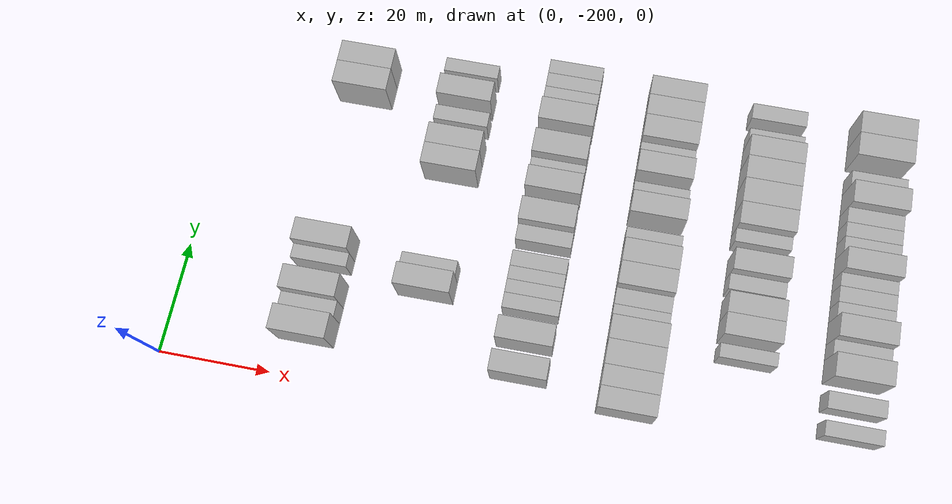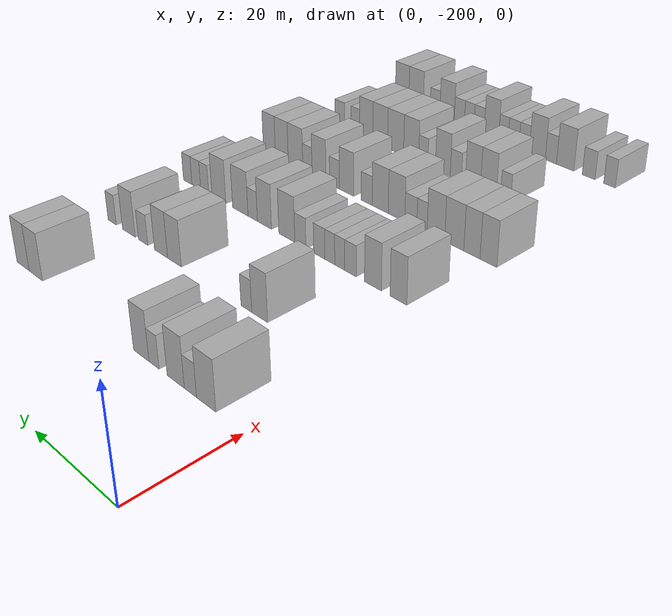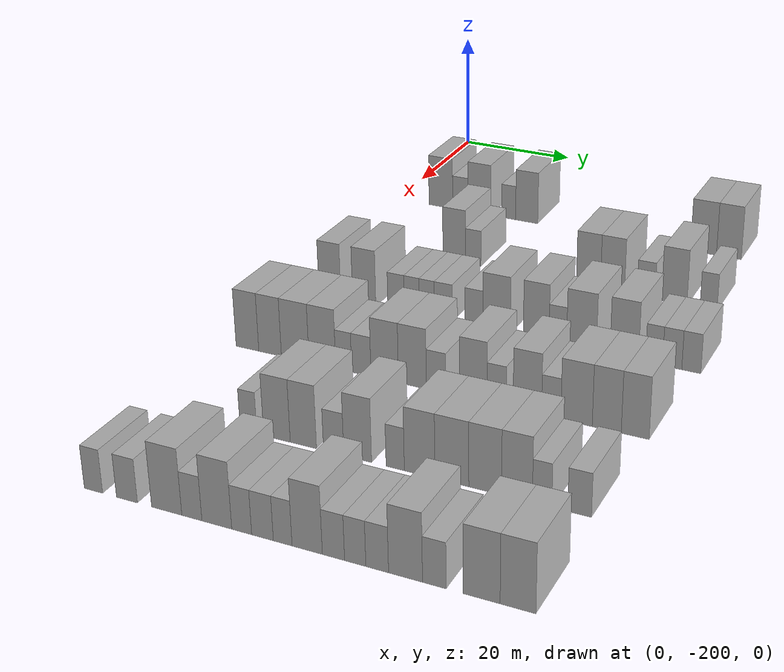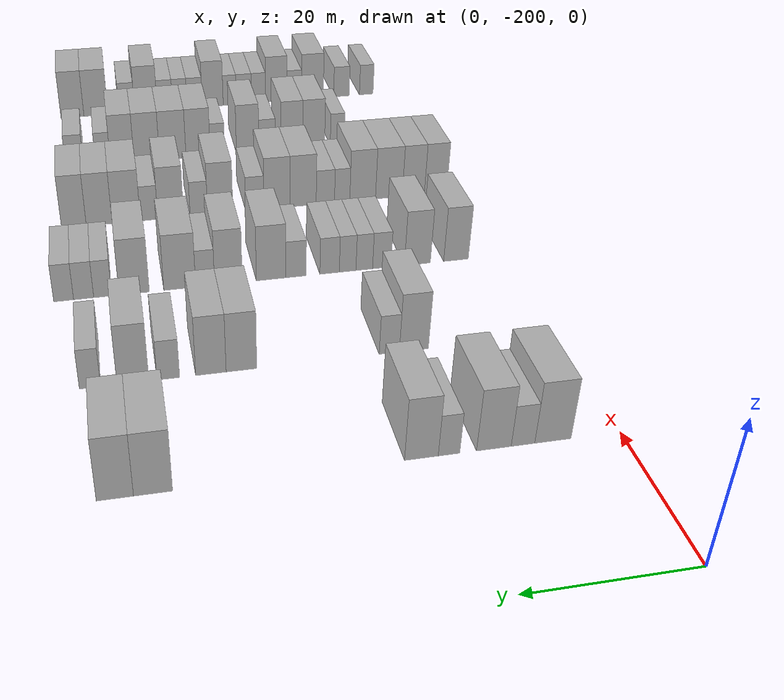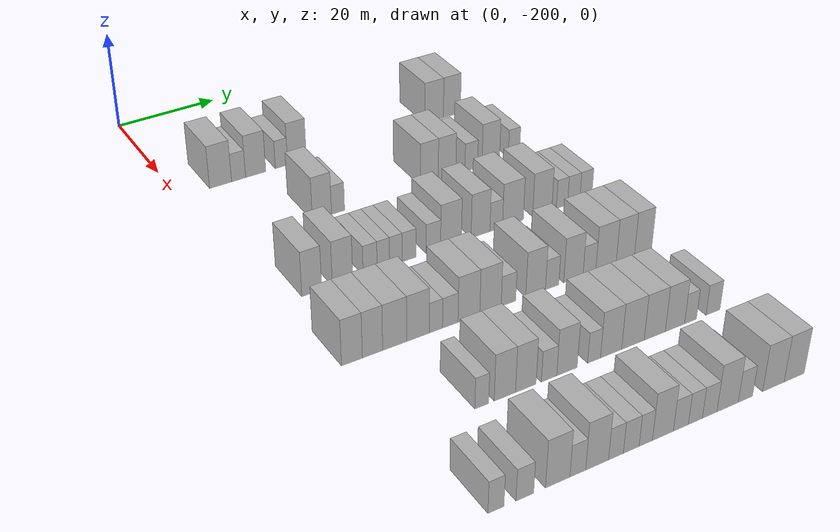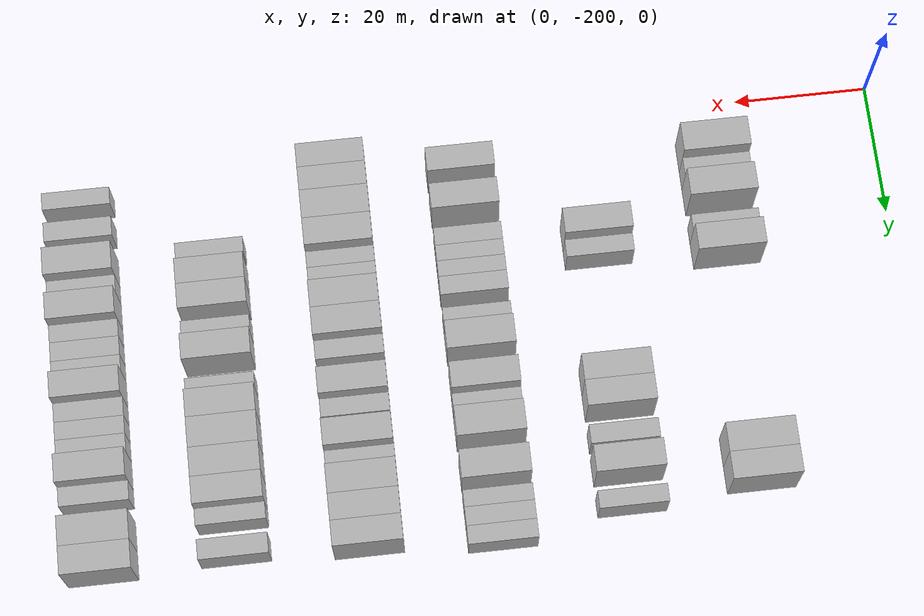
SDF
<sdf version="1.6">
 <world name="default">
  <model name="building_32">
   <static>1</static>
   <pose>25.0000 -191.6888 0 0.000000 0.000000 0.000000</pose>
   <link name="link">
    <pose>0 0 4.50 0 0 0</pose>
    <collision name="collision"><geometry><box><size>10.0000 4.4286 9.0000</size></box></geometry></collision>
    <visual name="visual">
     <cast_shadows>0</cast_shadows>
     <geometry><box><size>10.0000 4.4286 9.0000</size></box></geometry>
     <material>
      <script>
       <uri>model://HANNAS_wall/materials/scripts</uri>
       <uri>model://HANNAS_wall/materials/textures</uri>
       <name>vrc/HANNAS_wall</name>
      </script>
     </material>
    </visual>
   </link>
  </model>
  <model name="building_33">
   <static>1</static>
   <pose>25.0000 -188.0455 0 0.000000 0.000000 0.000000</pose>
   <link name="link">
    <pose>0 0 3.00 0 0 0</pose>
    <collision name="collision"><geometry><box><size>10.0000 2.8581 6.0000</size></box></geometry></collision>
    <visual name="visual">
     <cast_shadows>0</cast_shadows>
     <geometry><box><size>10.0000 2.8581 6.0000</size></box></geometry>
     <material>
      <script>
       <uri>model://HANNAS_wall/materials/scripts</uri>
       <uri>model://HANNAS_wall/materials/textures</uri>
       <name>vrc/HANNAS_wall</name>
      </script>
     </material>
    </visual>
   </link>
  </model>
  <model name="building_34">
   <static>1</static>
   <pose>25.0000 -184.5348 0 0.000000 0.000000 0.000000</pose>
   <link name="link">
    <pose>0 0 4.50 0 0 0</pose>
    <collision name="collision"><geometry><box><size>10.0000 4.1634 9.0000</size></box></geometry></collision>
    <visual name="visual">
     <cast_shadows>0</cast_shadows>
     <geometry><box><size>10.0000 4.1634 9.0000</size></box></geometry>
     <material>
      <script>
       <uri>model://HANNAS_wall/materials/scripts</uri>
       <uri>model://HANNAS_wall/materials/textures</uri>
       <name>vrc/HANNAS_wall</name>
      </script>
     </material>
    </visual>
   </link>
  </model>
  <model name="building_35">
   <static>1</static>
   <pose>25.0000 -179.1760 0 0.000000 0.000000 0.000000</pose>
   <link name="link">
    <pose>0 0 3.00 0 0 0</pose>
    <collision name="collision"><geometry><box><size>10.0000 2.5541 6.0000</size></box></geometry></collision>
    <visual name="visual">
     <cast_shadows>0</cast_shadows>
     <geometry><box><size>10.0000 2.5541 6.0000</size></box></geometry>
     <material>
      <script>
       <uri>model://HANNAS_wall/materials/scripts</uri>
       <uri>model://HANNAS_wall/materials/textures</uri>
       <name>vrc/HANNAS_wall</name>
      </script>
     </material>
    </visual>
   </link>
  </model>
  <model name="building_36">
   <static>1</static>
   <pose>25.0000 -175.9138 0 0.000000 0.000000 0.000000</pose>
   <link name="link">
    <pose>0 0 4.50 0 0 0</pose>
    <collision name="collision"><geometry><box><size>10.0000 3.9703 9.0000</size></box></geometry></collision>
    <visual name="visual">
     <cast_shadows>0</cast_shadows>
     <geometry><box><size>10.0000 3.9703 9.0000</size></box></geometry>
     <material>
      <script>
       <uri>model://HANNAS_wall/materials/scripts</uri>
       <uri>model://HANNAS_wall/materials/textures</uri>
       <name>vrc/HANNAS_wall</name>
      </script>
     </material>
    </visual>
   </link>
  </model>
  <model name="building_37">
   <static>1</static>
   <pose>25.0000 -145.5327 0 0.000000 0.000000 0.000000</pose>
   <link name="link">
    <pose>0 0 4.50 0 0 0</pose>
    <collision name="collision"><geometry><box><size>10.0000 4.2640 9.0000</size></box></geometry></collision>
    <visual name="visual">
     <cast_shadows>0</cast_shadows>
     <geometry><box><size>10.0000 4.2640 9.0000</size></box></geometry>
     <material>
      <script>
       <uri>model://HANNAS_wall/materials/scripts</uri>
       <uri>model://HANNAS_wall/materials/textures</uri>
       <name>vrc/HANNAS_wall</name>
      </script>
     </material>
    </visual>
   </link>
  </model>
  <model name="building_38">
   <static>1</static>
   <pose>25.0000 -141.3918 0 0.000000 0.000000 0.000000</pose>
   <link name="link">
    <pose>0 0 4.50 0 0 0</pose>
    <collision name="collision"><geometry><box><size>10.0000 4.0177 9.0000</size></box></geometry></collision>
    <visual name="visual">
     <cast_shadows>0</cast_shadows>
     <geometry><box><size>10.0000 4.0177 9.0000</size></box></geometry>
     <material>
      <script>
       <uri>model://HANNAS_wall/materials/scripts</uri>
       <uri>model://HANNAS_wall/materials/textures</uri>
       <name>vrc/HANNAS_wall</name>
      </script>
     </material>
    </visual>
   </link>
  </model>
  <model name="building_203">
   <static>1</static>
   <pose>44.0000 -180.4680 0 0.000000 0.000000 0.000000</pose>
   <link name="link">
    <pose>0 0 4.50 0 0 0</pose>
    <collision name="collision"><geometry><box><size>10.0000 3.8608 9.0000</size></box></geometry></collision>
    <visual name="visual">
     <cast_shadows>0</cast_shadows>
     <geometry><box><size>10.0000 3.8608 9.0000</size></box></geometry>
     <material>
      <script>
       <uri>model://HANNAS_wall/materials/scripts</uri>
       <uri>model://HANNAS_wall/materials/textures</uri>
       <name>vrc/HANNAS_wall</name>
      </script>
     </material>
    </visual>
   </link>
  </model>
  <model name="building_204">
   <static>1</static>
   <pose>44.0000 -177.2035 0 0.000000 0.000000 0.000000</pose>
   <link name="link">
    <pose>0 0 3.00 0 0 0</pose>
    <collision name="collision"><geometry><box><size>10.0000 2.6682 6.0000</size></box></geometry></collision>
    <visual name="visual">
     <cast_shadows>0</cast_shadows>
     <geometry><box><size>10.0000 2.6682 6.0000</size></box></geometry>
     <material>
      <script>
       <uri>model://HANNAS_wall/materials/scripts</uri>
       <uri>model://HANNAS_wall/materials/textures</uri>
       <name>vrc/HANNAS_wall</name>
      </script>
     </material>
    </visual>
   </link>
  </model>
  <model name="building_205">
   <static>1</static>
   <pose>44.0000 -158.0438 0 0.000000 0.000000 0.000000</pose>
   <link name="link">
    <pose>0 0 4.50 0 0 0</pose>
    <collision name="collision"><geometry><box><size>10.0000 3.8838 9.0000</size></box></geometry></collision>
    <visual name="visual">
     <cast_shadows>0</cast_shadows>
     <geometry><box><size>10.0000 3.8838 9.0000</size></box></geometry>
     <material>
      <script>
       <uri>model://HANNAS_wall/materials/scripts</uri>
       <uri>model://HANNAS_wall/materials/textures</uri>
       <name>vrc/HANNAS_wall</name>
      </script>
     </material>
    </visual>
   </link>
  </model>
  <model name="building_206">
   <static>1</static>
   <pose>44.0000 -154.1832 0 0.000000 0.000000 0.000000</pose>
   <link name="link">
    <pose>0 0 4.50 0 0 0</pose>
    <collision name="collision"><geometry><box><size>10.0000 3.8373 9.0000</size></box></geometry></collision>
    <visual name="visual">
     <cast_shadows>0</cast_shadows>
     <geometry><box><size>10.0000 3.8373 9.0000</size></box></geometry>
     <material>
      <script>
       <uri>model://HANNAS_wall/materials/scripts</uri>
       <uri>model://HANNAS_wall/materials/textures</uri>
       <name>vrc/HANNAS_wall</name>
      </script>
     </material>
    </visual>
   </link>
  </model>
  <model name="building_207">
   <static>1</static>
   <pose>44.0000 -148.8569 0 0.000000 0.000000 0.000000</pose>
   <link name="link">
    <pose>0 0 3.00 0 0 0</pose>
    <collision name="collision"><geometry><box><size>10.0000 2.8153 6.0000</size></box></geometry></collision>
    <visual name="visual">
     <cast_shadows>0</cast_shadows>
     <geometry><box><size>10.0000 2.8153 6.0000</size></box></geometry>
     <material>
      <script>
       <uri>model://HANNAS_wall/materials/scripts</uri>
       <uri>model://HANNAS_wall/materials/textures</uri>
       <name>vrc/HANNAS_wall</name>
      </script>
     </material>
    </visual>
   </link>
  </model>
  <model name="building_208">
   <static>1</static>
   <pose>44.0000 -144.4841 0 0.000000 0.000000 0.000000</pose>
   <link name="link">
    <pose>0 0 4.50 0 0 0</pose>
    <collision name="collision"><geometry><box><size>10.0000 3.9303 9.0000</size></box></geometry></collision>
    <visual name="visual">
     <cast_shadows>0</cast_shadows>
     <geometry><box><size>10.0000 3.9303 9.0000</size></box></geometry>
     <material>
      <script>
       <uri>model://HANNAS_wall/materials/scripts</uri>
       <uri>model://HANNAS_wall/materials/textures</uri>
       <name>vrc/HANNAS_wall</name>
      </script>
     </material>
    </visual>
   </link>
  </model>
  <model name="building_209">
   <static>1</static>
   <pose>44.0000 -139.2218 0 0.000000 0.000000 0.000000</pose>
   <link name="link">
    <pose>0 0 3.00 0 0 0</pose>
    <collision name="collision"><geometry><box><size>10.0000 2.5944 6.0000</size></box></geometry></collision>
    <visual name="visual">
     <cast_shadows>0</cast_shadows>
     <geometry><box><size>10.0000 2.5944 6.0000</size></box></geometry>
     <material>
      <script>
       <uri>model://HANNAS_wall/materials/scripts</uri>
       <uri>model://HANNAS_wall/materials/textures</uri>
       <name>vrc/HANNAS_wall</name>
      </script>
     </material>
    </visual>
   </link>
  </model>
  <model name="building_373">
   <static>1</static>
   <pose>63.0000 -192.2222 0 0.000000 0.000000 0.000000</pose>
   <link name="link">
    <pose>0 0 4.50 0 0 0</pose>
    <collision name="collision"><geometry><box><size>10.0000 3.7101 9.0000</size></box></geometry></collision>
    <visual name="visual">
     <cast_shadows>0</cast_shadows>
     <geometry><box><size>10.0000 3.7101 9.0000</size></box></geometry>
     <material>
      <script>
       <uri>model://HANNAS_wall/materials/scripts</uri>
       <uri>model://HANNAS_wall/materials/textures</uri>
       <name>vrc/HANNAS_wall</name>
      </script>
     </material>
    </visual>
   </link>
  </model>
  <model name="building_374">
   <static>1</static>
   <pose>63.0000 -186.4285 0 0.000000 0.000000 0.000000</pose>
   <link name="link">
    <pose>0 0 4.50 0 0 0</pose>
    <collision name="collision"><geometry><box><size>10.0000 3.8772 9.0000</size></box></geometry></collision>
    <visual name="visual">
     <cast_shadows>0</cast_shadows>
     <geometry><box><size>10.0000 3.8772 9.0000</size></box></geometry>
     <material>
      <script>
       <uri>model://HANNAS_wall/materials/scripts</uri>
       <uri>model://HANNAS_wall/materials/textures</uri>
       <name>vrc/HANNAS_wall</name>
      </script>
     </material>
    </visual>
   </link>
  </model>
  <model name="building_375">
   <static>1</static>
   <pose>63.0000 -181.1315 0 0.000000 0.000000 0.000000</pose>
   <link name="link">
    <pose>0 0 3.00 0 0 0</pose>
    <collision name="collision"><geometry><box><size>10.0000 2.7168 6.0000</size></box></geometry></collision>
    <visual name="visual">
     <cast_shadows>0</cast_shadows>
     <geometry><box><size>10.0000 2.7168 6.0000</size></box></geometry>
     <material>
      <script>
       <uri>model://HANNAS_wall/materials/scripts</uri>
       <uri>model://HANNAS_wall/materials/textures</uri>
       <name>vrc/HANNAS_wall</name>
      </script>
     </material>
    </visual>
   </link>
  </model>
  <model name="building_376">
   <static>1</static>
   <pose>63.0000 -178.5489 0 0.000000 0.000000 0.000000</pose>
   <link name="link">
    <pose>0 0 3.00 0 0 0</pose>
    <collision name="collision"><geometry><box><size>10.0000 2.4485 6.0000</size></box></geometry></collision>
    <visual name="visual">
     <cast_shadows>0</cast_shadows>
     <geometry><box><size>10.0000 2.4485 6.0000</size></box></geometry>
     <material>
      <script>
       <uri>model://HANNAS_wall/materials/scripts</uri>
       <uri>model://HANNAS_wall/materials/textures</uri>
       <name>vrc/HANNAS_wall</name>
      </script>
     </material>
    </visual>
   </link>
  </model>
  <model name="building_377">
   <static>1</static>
   <pose>63.0000 -176.1069 0 0.000000 0.000000 0.000000</pose>
   <link name="link">
    <pose>0 0 3.00 0 0 0</pose>
    <collision name="collision"><geometry><box><size>10.0000 2.4354 6.0000</size></box></geometry></collision>
    <visual name="visual">
     <cast_shadows>0</cast_shadows>
     <geometry><box><size>10.0000 2.4354 6.0000</size></box></geometry>
     <material>
      <script>
       <uri>model://HANNAS_wall/materials/scripts</uri>
       <uri>model://HANNAS_wall/materials/textures</uri>
       <name>vrc/HANNAS_wall</name>
      </script>
     </material>
    </visual>
   </link>
  </model>
  <model name="building_378">
   <static>1</static>
   <pose>63.0000 -173.4759 0 0.000000 0.000000 0.000000</pose>
   <link name="link">
    <pose>0 0 3.00 0 0 0</pose>
    <collision name="collision"><geometry><box><size>10.0000 2.8267 6.0000</size></box></geometry></collision>
    <visual name="visual">
     <cast_shadows>0</cast_shadows>
     <geometry><box><size>10.0000 2.8267 6.0000</size></box></geometry>
     <material>
      <script>
       <uri>model://HANNAS_wall/materials/scripts</uri>
       <uri>model://HANNAS_wall/materials/textures</uri>
       <name>vrc/HANNAS_wall</name>
      </script>
     </material>
    </visual>
   </link>
  </model>
  <model name="building_379">
   <static>1</static>
   <pose>63.0000 -168.6090 0 0.000000 0.000000 0.000000</pose>
   <link name="link">
    <pose>0 0 3.00 0 0 0</pose>
    <collision name="collision"><geometry><box><size>10.0000 2.9070 6.0000</size></box></geometry></collision>
    <visual name="visual">
     <cast_shadows>0</cast_shadows>
     <geometry><box><size>10.0000 2.9070 6.0000</size></box></geometry>
     <material>
      <script>
       <uri>model://HANNAS_wall/materials/scripts</uri>
       <uri>model://HANNAS_wall/materials/textures</uri>
       <name>vrc/HANNAS_wall</name>
      </script>
     </material>
    </visual>
   </link>
  </model>
  <model name="building_380">
   <static>1</static>
   <pose>63.0000 -165.0310 0 0.000000 0.000000 0.000000</pose>
   <link name="link">
    <pose>0 0 4.50 0 0 0</pose>
    <collision name="collision"><geometry><box><size>10.0000 4.2492 9.0000</size></box></geometry></collision>
    <visual name="visual">
     <cast_shadows>0</cast_shadows>
     <geometry><box><size>10.0000 4.2492 9.0000</size></box></geometry>
     <material>
      <script>
       <uri>model://HANNAS_wall/materials/scripts</uri>
       <uri>model://HANNAS_wall/materials/textures</uri>
       <name>vrc/HANNAS_wall</name>
      </script>
     </material>
    </visual>
   </link>
  </model>
  <model name="building_381">
   <static>1</static>
   <pose>63.0000 -158.9489 0 0.000000 0.000000 0.000000</pose>
   <link name="link">
    <pose>0 0 4.50 0 0 0</pose>
    <collision name="collision"><geometry><box><size>10.0000 3.9150 9.0000</size></box></geometry></collision>
    <visual name="visual">
     <cast_shadows>0</cast_shadows>
     <geometry><box><size>10.0000 3.9150 9.0000</size></box></geometry>
     <material>
      <script>
       <uri>model://HANNAS_wall/materials/scripts</uri>
       <uri>model://HANNAS_wall/materials/textures</uri>
       <name>vrc/HANNAS_wall</name>
      </script>
     </material>
    </visual>
   </link>
  </model>
  <model name="building_382">
   <static>1</static>
   <pose>63.0000 -155.6647 0 0.000000 0.000000 0.000000</pose>
   <link name="link">
    <pose>0 0 3.00 0 0 0</pose>
    <collision name="collision"><geometry><box><size>10.0000 2.6535 6.0000</size></box></geometry></collision>
    <visual name="visual">
     <cast_shadows>0</cast_shadows>
     <geometry><box><size>10.0000 2.6535 6.0000</size></box></geometry>
     <material>
      <script>
       <uri>model://HANNAS_wall/materials/scripts</uri>
       <uri>model://HANNAS_wall/materials/textures</uri>
       <name>vrc/HANNAS_wall</name>
      </script>
     </material>
    </visual>
   </link>
  </model>
  <model name="building_383">
   <static>1</static>
   <pose>63.0000 -152.1112 0 0.000000 0.000000 0.000000</pose>
   <link name="link">
    <pose>0 0 4.50 0 0 0</pose>
    <collision name="collision"><geometry><box><size>10.0000 4.4535 9.0000</size></box></geometry></collision>
    <visual name="visual">
     <cast_shadows>0</cast_shadows>
     <geometry><box><size>10.0000 4.4535 9.0000</size></box></geometry>
     <material>
      <script>
       <uri>model://HANNAS_wall/materials/scripts</uri>
       <uri>model://HANNAS_wall/materials/textures</uri>
       <name>vrc/HANNAS_wall</name>
      </script>
     </material>
    </visual>
   </link>
  </model>
  <model name="building_384">
   <static>1</static>
   <pose>63.0000 -145.7949 0 0.000000 0.000000 0.000000</pose>
   <link name="link">
    <pose>0 0 4.50 0 0 0</pose>
    <collision name="collision"><geometry><box><size>10.0000 4.1791 9.0000</size></box></geometry></collision>
    <visual name="visual">
     <cast_shadows>0</cast_shadows>
     <geometry><box><size>10.0000 4.1791 9.0000</size></box></geometry>
     <material>
      <script>
       <uri>model://HANNAS_wall/materials/scripts</uri>
       <uri>model://HANNAS_wall/materials/textures</uri>
       <name>vrc/HANNAS_wall</name>
      </script>
     </material>
    </visual>
   </link>
  </model>
  <model name="building_385">
   <static>1</static>
   <pose>63.0000 -141.4690 0 0.000000 0.000000 0.000000</pose>
   <link name="link">
    <pose>0 0 3.00 0 0 0</pose>
    <collision name="collision"><geometry><box><size>10.0000 2.4728 6.0000</size></box></geometry></collision>
    <visual name="visual">
     <cast_shadows>0</cast_shadows>
     <geometry><box><size>10.0000 2.4728 6.0000</size></box></geometry>
     <material>
      <script>
       <uri>model://HANNAS_wall/materials/scripts</uri>
       <uri>model://HANNAS_wall/materials/textures</uri>
       <name>vrc/HANNAS_wall</name>
      </script>
     </material>
    </visual>
   </link>
  </model>
  <model name="building_386">
   <static>1</static>
   <pose>63.0000 -138.8654 0 0.000000 0.000000 0.000000</pose>
   <link name="link">
    <pose>0 0 3.00 0 0 0</pose>
    <collision name="collision"><geometry><box><size>10.0000 2.7344 6.0000</size></box></geometry></collision>
    <visual name="visual">
     <cast_shadows>0</cast_shadows>
     <geometry><box><size>10.0000 2.7344 6.0000</size></box></geometry>
     <material>
      <script>
       <uri>model://HANNAS_wall/materials/scripts</uri>
       <uri>model://HANNAS_wall/materials/textures</uri>
       <name>vrc/HANNAS_wall</name>
      </script>
     </material>
    </visual>
   </link>
  </model>
  <model name="building_387">
   <static>1</static>
   <pose>63.0000 -136.1534 0 0.000000 0.000000 0.000000</pose>
   <link name="link">
    <pose>0 0 3.00 0 0 0</pose>
    <collision name="collision"><geometry><box><size>10.0000 2.6896 6.0000</size></box></geometry></collision>
    <visual name="visual">
     <cast_shadows>0</cast_shadows>
     <geometry><box><size>10.0000 2.6896 6.0000</size></box></geometry>
     <material>
      <script>
       <uri>model://HANNAS_wall/materials/scripts</uri>
       <uri>model://HANNAS_wall/materials/textures</uri>
       <name>vrc/HANNAS_wall</name>
      </script>
     </material>
    </visual>
   </link>
  </model>
  <model name="building_546">
   <static>1</static>
   <pose>82.0000 -194.9190 0 0.000000 0.000000 0.000000</pose>
   <link name="link">
    <pose>0 0 4.50 0 0 0</pose>
    <collision name="collision"><geometry><box><size>10.0000 3.6965 9.0000</size></box></geometry></collision>
    <visual name="visual">
     <cast_shadows>0</cast_shadows>
     <geometry><box><size>10.0000 3.6965 9.0000</size></box></geometry>
     <material>
      <script>
       <uri>model://HANNAS_wall/materials/scripts</uri>
       <uri>model://HANNAS_wall/materials/textures</uri>
       <name>vrc/HANNAS_wall</name>
      </script>
     </material>
    </visual>
   </link>
  </model>
  <model name="building_547">
   <static>1</static>
   <pose>82.0000 -191.2477 0 0.000000 0.000000 0.000000</pose>
   <link name="link">
    <pose>0 0 4.50 0 0 0</pose>
    <collision name="collision"><geometry><box><size>10.0000 3.6463 9.0000</size></box></geometry></collision>
    <visual name="visual">
     <cast_shadows>0</cast_shadows>
     <geometry><box><size>10.0000 3.6463 9.0000</size></box></geometry>
     <material>
      <script>
       <uri>model://HANNAS_wall/materials/scripts</uri>
       <uri>model://HANNAS_wall/materials/textures</uri>
       <name>vrc/HANNAS_wall</name>
      </script>
     </material>
    </visual>
   </link>
  </model>
  <model name="building_548">
   <static>1</static>
   <pose>82.0000 -187.2249 0 0.000000 0.000000 0.000000</pose>
   <link name="link">
    <pose>0 0 4.50 0 0 0</pose>
    <collision name="collision"><geometry><box><size>10.0000 4.3992 9.0000</size></box></geometry></collision>
    <visual name="visual">
     <cast_shadows>0</cast_shadows>
     <geometry><box><size>10.0000 4.3992 9.0000</size></box></geometry>
     <material>
      <script>
       <uri>model://HANNAS_wall/materials/scripts</uri>
       <uri>model://HANNAS_wall/materials/textures</uri>
       <name>vrc/HANNAS_wall</name>
      </script>
     </material>
    </visual>
   </link>
  </model>
  <model name="building_549">
   <static>1</static>
   <pose>82.0000 -182.9332 0 0.000000 0.000000 0.000000</pose>
   <link name="link">
    <pose>0 0 4.50 0 0 0</pose>
    <collision name="collision"><geometry><box><size>10.0000 4.1843 9.0000</size></box></geometry></collision>
    <visual name="visual">
     <cast_shadows>0</cast_shadows>
     <geometry><box><size>10.0000 4.1843 9.0000</size></box></geometry>
     <material>
      <script>
       <uri>model://HANNAS_wall/materials/scripts</uri>
       <uri>model://HANNAS_wall/materials/textures</uri>
       <name>vrc/HANNAS_wall</name>
      </script>
     </material>
    </visual>
   </link>
  </model>
  <model name="building_550">
   <static>1</static>
   <pose>82.0000 -179.6045 0 0.000000 0.000000 0.000000</pose>
   <link name="link">
    <pose>0 0 3.00 0 0 0</pose>
    <collision name="collision"><geometry><box><size>10.0000 2.4730 6.0000</size></box></geometry></collision>
    <visual name="visual">
     <cast_shadows>0</cast_shadows>
     <geometry><box><size>10.0000 2.4730 6.0000</size></box></geometry>
     <material>
      <script>
       <uri>model://HANNAS_wall/materials/scripts</uri>
       <uri>model://HANNAS_wall/materials/textures</uri>
       <name>vrc/HANNAS_wall</name>
      </script>
     </material>
    </visual>
   </link>
  </model>
  <model name="building_551">
   <static>1</static>
   <pose>82.0000 -176.8918 0 0.000000 0.000000 0.000000</pose>
   <link name="link">
    <pose>0 0 3.00 0 0 0</pose>
    <collision name="collision"><geometry><box><size>10.0000 2.9524 6.0000</size></box></geometry></collision>
    <visual name="visual">
     <cast_shadows>0</cast_shadows>
     <geometry><box><size>10.0000 2.9524 6.0000</size></box></geometry>
     <material>
      <script>
       <uri>model://HANNAS_wall/materials/scripts</uri>
       <uri>model://HANNAS_wall/materials/textures</uri>
       <name>vrc/HANNAS_wall</name>
      </script>
     </material>
    </visual>
   </link>
  </model>
  <model name="building_552">
   <static>1</static>
   <pose>82.0000 -173.3333 0 0.000000 0.000000 0.000000</pose>
   <link name="link">
    <pose>0 0 4.50 0 0 0</pose>
    <collision name="collision"><geometry><box><size>10.0000 4.1647 9.0000</size></box></geometry></collision>
    <visual name="visual">
     <cast_shadows>0</cast_shadows>
     <geometry><box><size>10.0000 4.1647 9.0000</size></box></geometry>
     <material>
      <script>
       <uri>model://HANNAS_wall/materials/scripts</uri>
       <uri>model://HANNAS_wall/materials/textures</uri>
       <name>vrc/HANNAS_wall</name>
      </script>
     </material>
    </visual>
   </link>
  </model>
  <model name="building_553">
   <static>1</static>
   <pose>82.0000 -169.1701 0 0.000000 0.000000 0.000000</pose>
   <link name="link">
    <pose>0 0 4.50 0 0 0</pose>
    <collision name="collision"><geometry><box><size>10.0000 4.1615 9.0000</size></box></geometry></collision>
    <visual name="visual">
     <cast_shadows>0</cast_shadows>
     <geometry><box><size>10.0000 4.1615 9.0000</size></box></geometry>
     <material>
      <script>
       <uri>model://HANNAS_wall/materials/scripts</uri>
       <uri>model://HANNAS_wall/materials/textures</uri>
       <name>vrc/HANNAS_wall</name>
      </script>
     </material>
    </visual>
   </link>
  </model>
  <model name="building_554">
   <static>1</static>
   <pose>82.0000 -165.6515 0 0.000000 0.000000 0.000000</pose>
   <link name="link">
    <pose>0 0 3.00 0 0 0</pose>
    <collision name="collision"><geometry><box><size>10.0000 2.8758 6.0000</size></box></geometry></collision>
    <visual name="visual">
     <cast_shadows>0</cast_shadows>
     <geometry><box><size>10.0000 2.8758 6.0000</size></box></geometry>
     <material>
      <script>
       <uri>model://HANNAS_wall/materials/scripts</uri>
       <uri>model://HANNAS_wall/materials/textures</uri>
       <name>vrc/HANNAS_wall</name>
      </script>
     </material>
    </visual>
   </link>
  </model>
  <model name="building_555">
   <static>1</static>
   <pose>82.0000 -160.2362 0 0.000000 0.000000 0.000000</pose>
   <link name="link">
    <pose>0 0 4.50 0 0 0</pose>
    <collision name="collision"><geometry><box><size>10.0000 3.9548 9.0000</size></box></geometry></collision>
    <visual name="visual">
     <cast_shadows>0</cast_shadows>
     <geometry><box><size>10.0000 3.9548 9.0000</size></box></geometry>
     <material>
      <script>
       <uri>model://HANNAS_wall/materials/scripts</uri>
       <uri>model://HANNAS_wall/materials/textures</uri>
       <name>vrc/HANNAS_wall</name>
      </script>
     </material>
    </visual>
   </link>
  </model>
  <model name="building_556">
   <static>1</static>
   <pose>82.0000 -156.8993 0 0.000000 0.000000 0.000000</pose>
   <link name="link">
    <pose>0 0 3.00 0 0 0</pose>
    <collision name="collision"><geometry><box><size>10.0000 2.7191 6.0000</size></box></geometry></collision>
    <visual name="visual">
     <cast_shadows>0</cast_shadows>
     <geometry><box><size>10.0000 2.7191 6.0000</size></box></geometry>
     <material>
      <script>
       <uri>model://HANNAS_wall/materials/scripts</uri>
       <uri>model://HANNAS_wall/materials/textures</uri>
       <name>vrc/HANNAS_wall</name>
      </script>
     </material>
    </visual>
   </link>
  </model>
  <model name="building_557">
   <static>1</static>
   <pose>82.0000 -152.5490 0 0.000000 0.000000 0.000000</pose>
   <link name="link">
    <pose>0 0 4.50 0 0 0</pose>
    <collision name="collision"><geometry><box><size>10.0000 3.9816 9.0000</size></box></geometry></collision>
    <visual name="visual">
     <cast_shadows>0</cast_shadows>
     <geometry><box><size>10.0000 3.9816 9.0000</size></box></geometry>
     <material>
      <script>
       <uri>model://HANNAS_wall/materials/scripts</uri>
       <uri>model://HANNAS_wall/materials/textures</uri>
       <name>vrc/HANNAS_wall</name>
      </script>
     </material>
    </visual>
   </link>
  </model>
  <model name="building_558">
   <static>1</static>
   <pose>82.0000 -149.2231 0 0.000000 0.000000 0.000000</pose>
   <link name="link">
    <pose>0 0 3.00 0 0 0</pose>
    <collision name="collision"><geometry><box><size>10.0000 2.6702 6.0000</size></box></geometry></collision>
    <visual name="visual">
     <cast_shadows>0</cast_shadows>
     <geometry><box><size>10.0000 2.6702 6.0000</size></box></geometry>
     <material>
      <script>
       <uri>model://HANNAS_wall/materials/scripts</uri>
       <uri>model://HANNAS_wall/materials/textures</uri>
       <name>vrc/HANNAS_wall</name>
      </script>
     </material>
    </visual>
   </link>
  </model>
  <model name="building_559">
   <static>1</static>
   <pose>82.0000 -145.7361 0 0.000000 0.000000 0.000000</pose>
   <link name="link">
    <pose>0 0 4.50 0 0 0</pose>
    <collision name="collision"><geometry><box><size>10.0000 4.3038 9.0000</size></box></geometry></collision>
    <visual name="visual">
     <cast_shadows>0</cast_shadows>
     <geometry><box><size>10.0000 4.3038 9.0000</size></box></geometry>
     <material>
      <script>
       <uri>model://HANNAS_wall/materials/scripts</uri>
       <uri>model://HANNAS_wall/materials/textures</uri>
       <name>vrc/HANNAS_wall</name>
      </script>
     </material>
    </visual>
   </link>
  </model>
  <model name="building_560">
   <static>1</static>
   <pose>82.0000 -141.6313 0 0.000000 0.000000 0.000000</pose>
   <link name="link">
    <pose>0 0 4.50 0 0 0</pose>
    <collision name="collision"><geometry><box><size>10.0000 3.9057 9.0000</size></box></geometry></collision>
    <visual name="visual">
     <cast_shadows>0</cast_shadows>
     <geometry><box><size>10.0000 3.9057 9.0000</size></box></geometry>
     <material>
      <script>
       <uri>model://HANNAS_wall/materials/scripts</uri>
       <uri>model://HANNAS_wall/materials/textures</uri>
       <name>vrc/HANNAS_wall</name>
      </script>
     </material>
    </visual>
   </link>
  </model>
  <model name="building_561">
   <static>1</static>
   <pose>82.0000 -137.8219 0 0.000000 0.000000 0.000000</pose>
   <link name="link">
    <pose>0 0 4.50 0 0 0</pose>
    <collision name="collision"><geometry><box><size>10.0000 3.7132 9.0000</size></box></geometry></collision>
    <visual name="visual">
     <cast_shadows>0</cast_shadows>
     <geometry><box><size>10.0000 3.7132 9.0000</size></box></geometry>
     <material>
      <script>
       <uri>model://HANNAS_wall/materials/scripts</uri>
       <uri>model://HANNAS_wall/materials/textures</uri>
       <name>vrc/HANNAS_wall</name>
      </script>
     </material>
    </visual>
   </link>
  </model>
  <model name="building_724">
   <static>1</static>
   <pose>101.0000 -183.0413 0 0.000000 0.000000 0.000000</pose>
   <link name="link">
    <pose>0 0 3.00 0 0 0</pose>
    <collision name="collision"><geometry><box><size>10.0000 2.4552 6.0000</size></box></geometry></collision>
    <visual name="visual">
     <cast_shadows>0</cast_shadows>
     <geometry><box><size>10.0000 2.4552 6.0000</size></box></geometry>
     <material>
      <script>
       <uri>model://HANNAS_wall/materials/scripts</uri>
       <uri>model://HANNAS_wall/materials/textures</uri>
       <name>vrc/HANNAS_wall</name>
      </script>
     </material>
    </visual>
   </link>
  </model>
  <model name="building_725">
   <static>1</static>
   <pose>101.0000 -178.8813 0 0.000000 0.000000 0.000000</pose>
   <link name="link">
    <pose>0 0 4.50 0 0 0</pose>
    <collision name="collision"><geometry><box><size>10.0000 3.8648 9.0000</size></box></geometry></collision>
    <visual name="visual">
     <cast_shadows>0</cast_shadows>
     <geometry><box><size>10.0000 3.8648 9.0000</size></box></geometry>
     <material>
      <script>
       <uri>model://HANNAS_wall/materials/scripts</uri>
       <uri>model://HANNAS_wall/materials/textures</uri>
       <name>vrc/HANNAS_wall</name>
      </script>
     </material>
    </visual>
   </link>
  </model>
  <model name="building_726">
   <static>1</static>
   <pose>101.0000 -175.0649 0 0.000000 0.000000 0.000000</pose>
   <link name="link">
    <pose>0 0 4.50 0 0 0</pose>
    <collision name="collision"><geometry><box><size>10.0000 3.7680 9.0000</size></box></geometry></collision>
    <visual name="visual">
     <cast_shadows>0</cast_shadows>
     <geometry><box><size>10.0000 3.7680 9.0000</size></box></geometry>
     <material>
      <script>
       <uri>model://HANNAS_wall/materials/scripts</uri>
       <uri>model://HANNAS_wall/materials/textures</uri>
       <name>vrc/HANNAS_wall</name>
      </script>
     </material>
    </visual>
   </link>
  </model>
  <model name="building_727">
   <static>1</static>
   <pose>101.0000 -170.7500 0 0.000000 0.000000 0.000000</pose>
   <link name="link">
    <pose>0 0 3.00 0 0 0</pose>
    <collision name="collision"><geometry><box><size>10.0000 2.8617 6.0000</size></box></geometry></collision>
    <visual name="visual">
     <cast_shadows>0</cast_shadows>
     <geometry><box><size>10.0000 2.8617 6.0000</size></box></geometry>
     <material>
      <script>
       <uri>model://HANNAS_wall/materials/scripts</uri>
       <uri>model://HANNAS_wall/materials/textures</uri>
       <name>vrc/HANNAS_wall</name>
      </script>
     </material>
    </visual>
   </link>
  </model>
  <model name="building_728">
   <static>1</static>
   <pose>101.0000 -167.3842 0 0.000000 0.000000 0.000000</pose>
   <link name="link">
    <pose>0 0 4.50 0 0 0</pose>
    <collision name="collision"><geometry><box><size>10.0000 3.8699 9.0000</size></box></geometry></collision>
    <visual name="visual">
     <cast_shadows>0</cast_shadows>
     <geometry><box><size>10.0000 3.8699 9.0000</size></box></geometry>
     <material>
      <script>
       <uri>model://HANNAS_wall/materials/scripts</uri>
       <uri>model://HANNAS_wall/materials/textures</uri>
       <name>vrc/HANNAS_wall</name>
      </script>
     </material>
    </visual>
   </link>
  </model>
  <model name="building_729">
   <static>1</static>
   <pose>101.0000 -162.2053 0 0.000000 0.000000 0.000000</pose>
   <link name="link">
    <pose>0 0 3.00 0 0 0</pose>
    <collision name="collision"><geometry><box><size>10.0000 2.4879 6.0000</size></box></geometry></collision>
    <visual name="visual">
     <cast_shadows>0</cast_shadows>
     <geometry><box><size>10.0000 2.4879 6.0000</size></box></geometry>
     <material>
      <script>
       <uri>model://HANNAS_wall/materials/scripts</uri>
       <uri>model://HANNAS_wall/materials/textures</uri>
       <name>vrc/HANNAS_wall</name>
      </script>
     </material>
    </visual>
   </link>
  </model>
  <model name="building_730">
   <static>1</static>
   <pose>101.0000 -158.8979 0 0.000000 0.000000 0.000000</pose>
   <link name="link">
    <pose>0 0 4.50 0 0 0</pose>
    <collision name="collision"><geometry><box><size>10.0000 4.1269 9.0000</size></box></geometry></collision>
    <visual name="visual">
     <cast_shadows>0</cast_shadows>
     <geometry><box><size>10.0000 4.1269 9.0000</size></box></geometry>
     <material>
      <script>
       <uri>model://HANNAS_wall/materials/scripts</uri>
       <uri>model://HANNAS_wall/materials/textures</uri>
       <name>vrc/HANNAS_wall</name>
      </script>
     </material>
    </visual>
   </link>
  </model>
  <model name="building_731">
   <static>1</static>
   <pose>101.0000 -154.5944 0 0.000000 0.000000 0.000000</pose>
   <link name="link">
    <pose>0 0 4.50 0 0 0</pose>
    <collision name="collision"><geometry><box><size>10.0000 4.4800 9.0000</size></box></geometry></collision>
    <visual name="visual">
     <cast_shadows>0</cast_shadows>
     <geometry><box><size>10.0000 4.4800 9.0000</size></box></geometry>
     <material>
      <script>
       <uri>model://HANNAS_wall/materials/scripts</uri>
       <uri>model://HANNAS_wall/materials/textures</uri>
       <name>vrc/HANNAS_wall</name>
      </script>
     </material>
    </visual>
   </link>
  </model>
  <model name="building_732">
   <static>1</static>
   <pose>101.0000 -150.2246 0 0.000000 0.000000 0.000000</pose>
   <link name="link">
    <pose>0 0 4.50 0 0 0</pose>
    <collision name="collision"><geometry><box><size>10.0000 4.2598 9.0000</size></box></geometry></collision>
    <visual name="visual">
     <cast_shadows>0</cast_shadows>
     <geometry><box><size>10.0000 4.2598 9.0000</size></box></geometry>
     <material>
      <script>
       <uri>model://HANNAS_wall/materials/scripts</uri>
       <uri>model://HANNAS_wall/materials/textures</uri>
       <name>vrc/HANNAS_wall</name>
      </script>
     </material>
    </visual>
   </link>
  </model>
  <model name="building_733">
   <static>1</static>
   <pose>101.0000 -146.1226 0 0.000000 0.000000 0.000000</pose>
   <link name="link">
    <pose>0 0 4.50 0 0 0</pose>
    <collision name="collision"><geometry><box><size>10.0000 3.9440 9.0000</size></box></geometry></collision>
    <visual name="visual">
     <cast_shadows>0</cast_shadows>
     <geometry><box><size>10.0000 3.9440 9.0000</size></box></geometry>
     <material>
      <script>
       <uri>model://HANNAS_wall/materials/scripts</uri>
       <uri>model://HANNAS_wall/materials/textures</uri>
       <name>vrc/HANNAS_wall</name>
      </script>
     </material>
    </visual>
   </link>
  </model>
  <model name="building_734">
   <static>1</static>
   <pose>101.0000 -142.9234 0 0.000000 0.000000 0.000000</pose>
   <link name="link">
    <pose>0 0 3.00 0 0 0</pose>
    <collision name="collision"><geometry><box><size>10.0000 2.4545 6.0000</size></box></geometry></collision>
    <visual name="visual">
     <cast_shadows>0</cast_shadows>
     <geometry><box><size>10.0000 2.4545 6.0000</size></box></geometry>
     <material>
      <script>
       <uri>model://HANNAS_wall/materials/scripts</uri>
       <uri>model://HANNAS_wall/materials/textures</uri>
       <name>vrc/HANNAS_wall</name>
      </script>
     </material>
    </visual>
   </link>
  </model>
  <model name="building_735">
   <static>1</static>
   <pose>101.0000 -138.2275 0 0.000000 0.000000 0.000000</pose>
   <link name="link">
    <pose>0 0 3.00 0 0 0</pose>
    <collision name="collision"><geometry><box><size>10.0000 2.9374 6.0000</size></box></geometry></collision>
    <visual name="visual">
     <cast_shadows>0</cast_shadows>
     <geometry><box><size>10.0000 2.9374 6.0000</size></box></geometry>
     <material>
      <script>
       <uri>model://HANNAS_wall/materials/scripts</uri>
       <uri>model://HANNAS_wall/materials/textures</uri>
       <name>vrc/HANNAS_wall</name>
      </script>
     </material>
    </visual>
   </link>
  </model>
  <model name="building_883">
   <static>1</static>
   <pose>120.0000 -192.8844 0 0.000000 0.000000 0.000000</pose>
   <link name="link">
    <pose>0 0 3.00 0 0 0</pose>
    <collision name="collision"><geometry><box><size>10.0000 2.6407 6.0000</size></box></geometry></collision>
    <visual name="visual">
     <cast_shadows>0</cast_shadows>
     <geometry><box><size>10.0000 2.6407 6.0000</size></box></geometry>
     <material>
      <script>
       <uri>model://HANNAS_wall/materials/scripts</uri>
       <uri>model://HANNAS_wall/materials/textures</uri>
       <name>vrc/HANNAS_wall</name>
      </script>
     </material>
    </visual>
   </link>
  </model>
  <model name="building_884">
   <static>1</static>
   <pose>120.0000 -188.0759 0 0.000000 0.000000 0.000000</pose>
   <link name="link">
    <pose>0 0 3.00 0 0 0</pose>
    <collision name="collision"><geometry><box><size>10.0000 2.9762 6.0000</size></box></geometry></collision>
    <visual name="visual">
     <cast_shadows>0</cast_shadows>
     <geometry><box><size>10.0000 2.9762 6.0000</size></box></geometry>
     <material>
      <script>
       <uri>model://HANNAS_wall/materials/scripts</uri>
       <uri>model://HANNAS_wall/materials/textures</uri>
       <name>vrc/HANNAS_wall</name>
      </script>
     </material>
    </visual>
   </link>
  </model>
  <model name="building_885">
   <static>1</static>
   <pose>120.0000 -182.4890 0 0.000000 0.000000 0.000000</pose>
   <link name="link">
    <pose>0 0 4.50 0 0 0</pose>
    <collision name="collision"><geometry><box><size>10.0000 4.1977 9.0000</size></box></geometry></collision>
    <visual name="visual">
     <cast_shadows>0</cast_shadows>
     <geometry><box><size>10.0000 4.1977 9.0000</size></box></geometry>
     <material>
      <script>
       <uri>model://HANNAS_wall/materials/scripts</uri>
       <uri>model://HANNAS_wall/materials/textures</uri>
       <name>vrc/HANNAS_wall</name>
      </script>
     </material>
    </visual>
   </link>
  </model>
  <model name="building_886">
   <static>1</static>
   <pose>120.0000 -179.0123 0 0.000000 0.000000 0.000000</pose>
   <link name="link">
    <pose>0 0 3.00 0 0 0</pose>
    <collision name="collision"><geometry><box><size>10.0000 2.7556 6.0000</size></box></geometry></collision>
    <visual name="visual">
     <cast_shadows>0</cast_shadows>
     <geometry><box><size>10.0000 2.7556 6.0000</size></box></geometry>
     <material>
      <script>
       <uri>model://HANNAS_wall/materials/scripts</uri>
       <uri>model://HANNAS_wall/materials/textures</uri>
       <name>vrc/HANNAS_wall</name>
      </script>
     </material>
    </visual>
   </link>
  </model>
  <model name="building_887">
   <static>1</static>
   <pose>120.0000 -175.6159 0 0.000000 0.000000 0.000000</pose>
   <link name="link">
    <pose>0 0 4.50 0 0 0</pose>
    <collision name="collision"><geometry><box><size>10.0000 4.0372 9.0000</size></box></geometry></collision>
    <visual name="visual">
     <cast_shadows>0</cast_shadows>
     <geometry><box><size>10.0000 4.0372 9.0000</size></box></geometry>
     <material>
      <script>
       <uri>model://HANNAS_wall/materials/scripts</uri>
       <uri>model://HANNAS_wall/materials/textures</uri>
       <name>vrc/HANNAS_wall</name>
      </script>
     </material>
    </visual>
   </link>
  </model>
  <model name="building_888">
   <static>1</static>
   <pose>120.0000 -172.2725 0 0.000000 0.000000 0.000000</pose>
   <link name="link">
    <pose>0 0 3.00 0 0 0</pose>
    <collision name="collision"><geometry><box><size>10.0000 2.6496 6.0000</size></box></geometry></collision>
    <visual name="visual">
     <cast_shadows>0</cast_shadows>
     <geometry><box><size>10.0000 2.6496 6.0000</size></box></geometry>
     <material>
      <script>
       <uri>model://HANNAS_wall/materials/scripts</uri>
       <uri>model://HANNAS_wall/materials/textures</uri>
       <name>vrc/HANNAS_wall</name>
      </script>
     </material>
    </visual>
   </link>
  </model>
  <model name="building_889">
   <static>1</static>
   <pose>120.0000 -169.5207 0 0.000000 0.000000 0.000000</pose>
   <link name="link">
    <pose>0 0 3.00 0 0 0</pose>
    <collision name="collision"><geometry><box><size>10.0000 2.8540 6.0000</size></box></geometry></collision>
    <visual name="visual">
     <cast_shadows>0</cast_shadows>
     <geometry><box><size>10.0000 2.8540 6.0000</size></box></geometry>
     <material>
      <script>
       <uri>model://HANNAS_wall/materials/scripts</uri>
       <uri>model://HANNAS_wall/materials/textures</uri>
       <name>vrc/HANNAS_wall</name>
      </script>
     </material>
    </visual>
   </link>
  </model>
  <model name="building_890">
   <static>1</static>
   <pose>120.0000 -166.8752 0 0.000000 0.000000 0.000000</pose>
   <link name="link">
    <pose>0 0 3.00 0 0 0</pose>
    <collision name="collision"><geometry><box><size>10.0000 2.4369 6.0000</size></box></geometry></collision>
    <visual name="visual">
     <cast_shadows>0</cast_shadows>
     <geometry><box><size>10.0000 2.4369 6.0000</size></box></geometry>
     <material>
      <script>
       <uri>model://HANNAS_wall/materials/scripts</uri>
       <uri>model://HANNAS_wall/materials/textures</uri>
       <name>vrc/HANNAS_wall</name>
      </script>
     </material>
    </visual>
   </link>
  </model>
  <model name="building_891">
   <static>1</static>
   <pose>120.0000 -163.7090 0 0.000000 0.000000 0.000000</pose>
   <link name="link">
    <pose>0 0 4.50 0 0 0</pose>
    <collision name="collision"><geometry><box><size>10.0000 3.8955 9.0000</size></box></geometry></collision>
    <visual name="visual">
     <cast_shadows>0</cast_shadows>
     <geometry><box><size>10.0000 3.8955 9.0000</size></box></geometry>
     <material>
      <script>
       <uri>model://HANNAS_wall/materials/scripts</uri>
       <uri>model://HANNAS_wall/materials/textures</uri>
       <name>vrc/HANNAS_wall</name>
      </script>
     </material>
    </visual>
   </link>
  </model>
  <model name="building_892">
   <static>1</static>
   <pose>120.0000 -160.3533 0 0.000000 0.000000 0.000000</pose>
   <link name="link">
    <pose>0 0 3.00 0 0 0</pose>
    <collision name="collision"><geometry><box><size>10.0000 2.8159 6.0000</size></box></geometry></collision>
    <visual name="visual">
     <cast_shadows>0</cast_shadows>
     <geometry><box><size>10.0000 2.8159 6.0000</size></box></geometry>
     <material>
      <script>
       <uri>model://HANNAS_wall/materials/scripts</uri>
       <uri>model://HANNAS_wall/materials/textures</uri>
       <name>vrc/HANNAS_wall</name>
      </script>
     </material>
    </visual>
   </link>
  </model>
  <model name="building_893">
   <static>1</static>
   <pose>120.0000 -157.6158 0 0.000000 0.000000 0.000000</pose>
   <link name="link">
    <pose>0 0 3.00 0 0 0</pose>
    <collision name="collision"><geometry><box><size>10.0000 2.6590 6.0000</size></box></geometry></collision>
    <visual name="visual">
     <cast_shadows>0</cast_shadows>
     <geometry><box><size>10.0000 2.6590 6.0000</size></box></geometry>
     <material>
      <script>
       <uri>model://HANNAS_wall/materials/scripts</uri>
       <uri>model://HANNAS_wall/materials/textures</uri>
       <name>vrc/HANNAS_wall</name>
      </script>
     </material>
    </visual>
   </link>
  </model>
  <model name="building_894">
   <static>1</static>
   <pose>120.0000 -154.8819 0 0.000000 0.000000 0.000000</pose>
   <link name="link">
    <pose>0 0 3.00 0 0 0</pose>
    <collision name="collision"><geometry><box><size>10.0000 2.8090 6.0000</size></box></geometry></collision>
    <visual name="visual">
     <cast_shadows>0</cast_shadows>
     <geometry><box><size>10.0000 2.8090 6.0000</size></box></geometry>
     <material>
      <script>
       <uri>model://HANNAS_wall/materials/scripts</uri>
       <uri>model://HANNAS_wall/materials/textures</uri>
       <name>vrc/HANNAS_wall</name>
      </script>
     </material>
    </visual>
   </link>
  </model>
  <model name="building_895">
   <static>1</static>
   <pose>120.0000 -151.4102 0 0.000000 0.000000 0.000000</pose>
   <link name="link">
    <pose>0 0 4.50 0 0 0</pose>
    <collision name="collision"><geometry><box><size>10.0000 4.1343 9.0000</size></box></geometry></collision>
    <visual name="visual">
     <cast_shadows>0</cast_shadows>
     <geometry><box><size>10.0000 4.1343 9.0000</size></box></geometry>
     <material>
      <script>
       <uri>model://HANNAS_wall/materials/scripts</uri>
       <uri>model://HANNAS_wall/materials/textures</uri>
       <name>vrc/HANNAS_wall</name>
      </script>
     </material>
    </visual>
   </link>
  </model>
  <model name="building_896">
   <static>1</static>
   <pose>120.0000 -147.9248 0 0.000000 0.000000 0.000000</pose>
   <link name="link">
    <pose>0 0 3.00 0 0 0</pose>
    <collision name="collision"><geometry><box><size>10.0000 2.8364 6.0000</size></box></geometry></collision>
    <visual name="visual">
     <cast_shadows>0</cast_shadows>
     <geometry><box><size>10.0000 2.8364 6.0000</size></box></geometry>
     <material>
      <script>
       <uri>model://HANNAS_wall/materials/scripts</uri>
       <uri>model://HANNAS_wall/materials/textures</uri>
       <name>vrc/HANNAS_wall</name>
      </script>
     </material>
    </visual>
   </link>
  </model>
  <model name="building_897">
   <static>1</static>
   <pose>120.0000 -142.3366 0 0.000000 0.000000 0.000000</pose>
   <link name="link">
    <pose>0 0 4.50 0 0 0</pose>
    <collision name="collision"><geometry><box><size>10.0000 4.3400 9.0000</size></box></geometry></collision>
    <visual name="visual">
     <cast_shadows>0</cast_shadows>
     <geometry><box><size>10.0000 4.3400 9.0000</size></box></geometry>
     <material>
      <script>
       <uri>model://HANNAS_wall/materials/scripts</uri>
       <uri>model://HANNAS_wall/materials/textures</uri>
       <name>vrc/HANNAS_wall</name>
      </script>
     </material>
    </visual>
   </link>
  </model>
  <model name="building_898">
   <static>1</static>
   <pose>120.0000 -138.1135 0 0.000000 0.000000 0.000000</pose>
   <link name="link">
    <pose>0 0 4.50 0 0 0</pose>
    <collision name="collision"><geometry><box><size>10.0000 4.1062 9.0000</size></box></geometry></collision>
    <visual name="visual">
     <cast_shadows>0</cast_shadows>
     <geometry><box><size>10.0000 4.1062 9.0000</size></box></geometry>
     <material>
      <script>
       <uri>model://HANNAS_wall/materials/scripts</uri>
       <uri>model://HANNAS_wall/materials/textures</uri>
       <name>vrc/HANNAS_wall</name>
      </script>
     </material>
    </visual>
   </link>
  </model>
 </world>
</sdf>
